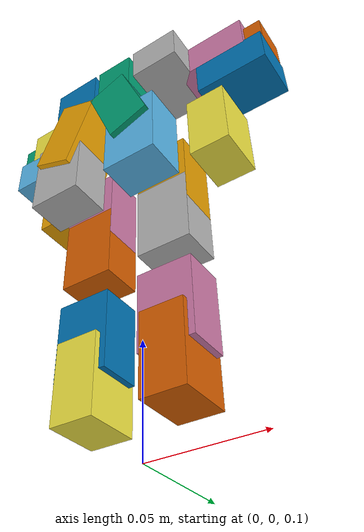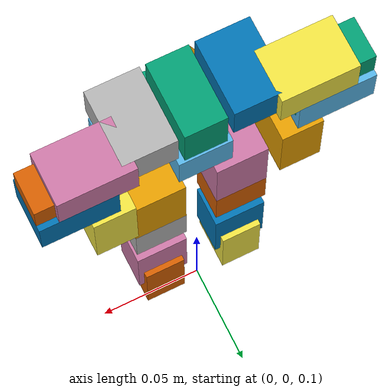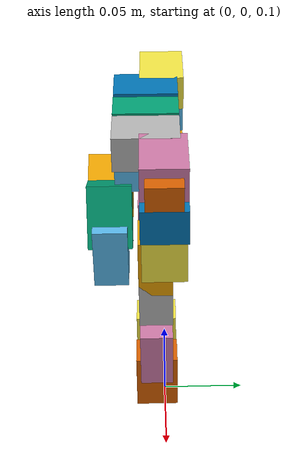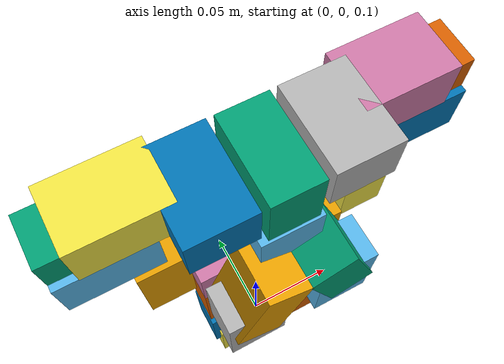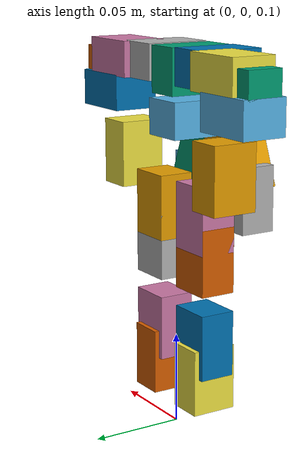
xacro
<robot name="robozero" xmlns:xacro="http://ros.org/wiki/xacro">
    <!--Links Declaration-->
    <link name="base_footprint"/>
    <!--body links       x2-->

    <xacro:macro name="servo" params="linkname xyz rpy">
        <link name="${linkname}">
            <visual>
                <geometry>
                    <box size="0.0358 0.0196 0.025"/>
                </geometry>
                <origin xyz="${xyz}" rpy="${rpy}"/>
            </visual>
            <collision>
                <geometry>
                    <box size="0.0358 0.0196 0.025"/>
                </geometry>
                <origin xyz="${xyz}" rpy="${rpy}"/>
            </collision>
            <inertial>
                <mass value="0.021"/>
                <inertia    ixx="0.00006" iyy="0.00004" izz="0.00007"
                            ixy="0.00005" ixz="0.00005" iyz="0.00005" />
                <origin xyz="${xyz}" rpy="${rpy}"/>
            </inertial>
        </link>
    </xacro:macro>

    <xacro:servo linkname="link23" xyz="0 -0.009 -0.01" rpy="1.57 0 1.57" />
    <xacro:servo linkname="link24" xyz="0 -0.009 0.015" rpy="0 0 1.57" />

    <!--right Arm links  x5-->
    <xacro:servo linkname="link13" xyz="0 0 -0.012" rpy="0 1.57 1.57" />
    <xacro:servo linkname="link14" xyz="0.01 0 0.001" rpy="1.57 0 0" />
    <xacro:servo linkname="link15" xyz="0.01 0 -0.013" rpy="0 0 0" />
    <xacro:servo linkname="link16" xyz="0.01 0 0" rpy="1.57 0 0" />
    <xacro:servo linkname="link17" xyz="0.01 -0.009 0" rpy="1.57 0 1.57" />

    <!--left  Arm links  x5-->
    <xacro:servo linkname="link18" xyz="0 0 -0.012" rpy="0 1.57 1.57" />
    <xacro:servo linkname="link19" xyz="-0.01 0 0.001" rpy="1.57 0 0" />
    <xacro:servo linkname="link20" xyz="-0.01 0 -0.013" rpy="0 0 0" />
    <xacro:servo linkname="link21" xyz="-0.01 0 0" rpy="1.57 0 0" />
    <xacro:servo linkname="link22" xyz="-0.01 -0.009 0" rpy="1.57 0 1.57" />

    <!--right Leg links  x6-->
    <xacro:servo linkname="link01" xyz="0 0 -0.01" rpy="0 1.57 1.57" />
    <xacro:servo linkname="link02" xyz="0 0 -0.02" rpy="1.57 1.57 1.57" />
    <xacro:servo linkname="link03" xyz="0 0 -0.012" rpy="1.57 1.57 1.57" />
    <xacro:servo linkname="link04" xyz="0 0 -0.02" rpy="1.57 1.57 1.57" />
    <xacro:servo linkname="link05" xyz="0 0 -0.012" rpy="1.57 1.57 1.57" />
    <xacro:servo linkname="link06" xyz="0.005 0 -0.018" rpy="1.57 1.2 0" />

    <!--left  Leg links  x6-->
    <xacro:servo linkname="link07" xyz="0 0 -0.01" rpy="0 1.57 1.57" />
    <xacro:servo linkname="link08" xyz="0 0 -0.02" rpy="1.57 1.57 1.57" />
    <xacro:servo linkname="link09" xyz="0 0 -0.012" rpy="1.57 1.57 1.57" />
    <xacro:servo linkname="link10" xyz="0 0 -0.02" rpy="1.57 1.57 1.57" />
    <xacro:servo linkname="link11" xyz="0 0 -0.012" rpy="1.57 1.57 1.57" />
    <xacro:servo linkname="link12" xyz="-0.005 0 -0.018" rpy="1.57 -1.2 0" />

    <!--Joints Declaration-->

    <xacro:macro name="joint_revolute" params="jointname parent child xyz asix">
        <joint name="${jointname}" type="revolute">
            <parent link="${parent}"/>
            <child  link="${child}"/>
            <origin xyz="${xyz}" rpy="0 0 0"/>
            <axis xyz="${asix}"/>
            <limit lower="-2.61799" upper="2.61799" effort="0.05" velocity="0.48"/>
        </joint>

        <transmission name="${jointname}_trans">
            <type>transmission_interface/SimpleTransmission</type>
            <joint name="${jointname}">
                <hardwareInterface>hardware_interface/PositionJointInterface</hardwareInterface>
            </joint>
            <actuator name="${jointname}_motor">
                <hardwareInterface>hardware_interface/PositionJointInterface</hardwareInterface>
                <mechanicalReduction>1</mechanicalReduction>
            </actuator>
        </transmission>
    </xacro:macro>

    <xacro:macro name="joint_fixed" params="jointname parent child xyz">
        <joint name="${jointname}" type="fixed">
            <parent link="${parent}"/>
            <child  link="${child}"/>
            <origin xyz="${xyz}" rpy="0 0 0"/>
        </joint>
    </xacro:macro>

    <xacro:joint_fixed jointname="joint_base" parent="base_footprint" child="link24" xyz="0 0 0.28" />

    <!--Body Joints       x2-->
    <xacro:joint_revolute jointname="joint23_24" parent="link24" child="link23" xyz="0 0 0" asix="0 0 1"/>

    <!--right Arm Joints  x5-->
    <xacro:joint_fixed jointname="joint17_24" parent="link24" child="link17" xyz="0.015 0 0.018" />
    <xacro:joint_revolute jointname="joint16_17" parent="link17" child="link16" xyz="0.025 0 0" asix="1 0 0"/>
    <xacro:joint_revolute jointname="joint15_16" parent="link16" child="link15" xyz="0.009 0 0.005" asix="0 1 0"/>
    <xacro:joint_revolute jointname="joint14_15" parent="link15" child="link14" xyz="0 0 -0.025" asix="0 0 1"/>
    <xacro:joint_revolute jointname="joint13_14" parent="link14" child="link13" xyz="-0.005 0 -0.02" asix="0 1 0"/>

    <!--left  Arm joints  x5-->
    <xacro:joint_fixed jointname="joint22_24" parent="link24" child="link22" xyz="-0.015 0 0.018" />
    <xacro:joint_revolute jointname="joint21_22" parent="link22" child="link21" xyz="-0.025 0 0" asix="1 0 0"/>
    <xacro:joint_revolute jointname="joint20_21" parent="link21" child="link20" xyz="-0.009 0 0.005" asix="0 1 0"/>
    <xacro:joint_revolute jointname="joint19_20" parent="link20" child="link19" xyz="0 0 -0.025" asix="0 0 1"/>
    <xacro:joint_revolute jointname="joint18_19" parent="link19" child="link18" xyz="0.005 0 -0.02" asix="0 1 0"/>

    <!--right Leg joints  x6-->
    <xacro:joint_fixed jointname="joint06_23" parent="link23" child="link06" xyz="0.01 -0.03 -0.015" />
    <xacro:joint_revolute jointname="joint05_06" parent="link06" child="link05" xyz="0.01 0 -0.025" asix="0 1 0"/>
    <xacro:joint_revolute jointname="joint04_05" parent="link05" child="link04" xyz="0 0.025 0" asix="1 0 0"/>
    <xacro:joint_revolute jointname="joint03_04" parent="link04" child="link03" xyz="0 0 -0.03" asix="1 0 0"/>
    <xacro:joint_revolute jointname="joint02_03" parent="link03" child="link02" xyz="0 0 -0.038" asix="1 0 0"/>
    <xacro:joint_revolute jointname="joint01_02" parent="link02" child="link01" xyz="0 0 -0.03" asix="1 0 0"/>

    <!--left  Leg joints  x6-->
    <xacro:joint_fixed jointname="joint12_23" parent="link23" child="link12" xyz="-0.01 -0.03 -0.015" />
    <xacro:joint_revolute jointname="joint11_12" parent="link12" child="link11" xyz="-0.01 0 -0.025" asix="0 1 0"/>
    <xacro:joint_revolute jointname="joint10_11" parent="link11" child="link10" xyz="0 0.025 0" asix="1 0 0"/>
    <xacro:joint_revolute jointname="joint09_10" parent="link10" child="link09" xyz="0 0 -0.03" asix="1 0 0"/>
    <xacro:joint_revolute jointname="joint08_09" parent="link09" child="link08" xyz="0 0 -0.038" asix="1 0 0"/>
    <xacro:joint_revolute jointname="joint07_08" parent="link08" child="link07" xyz="0 0 -0.03" asix="1 0 0"/>

    <!-- gazebo -->
    <gazebo>
        <plugin name="gazebo_ros_control" filename="libgazebo_ros_control.so">
            <robotNamespace>robozero</robotNamespace>
        </plugin>
    </gazebo>

</robot>
